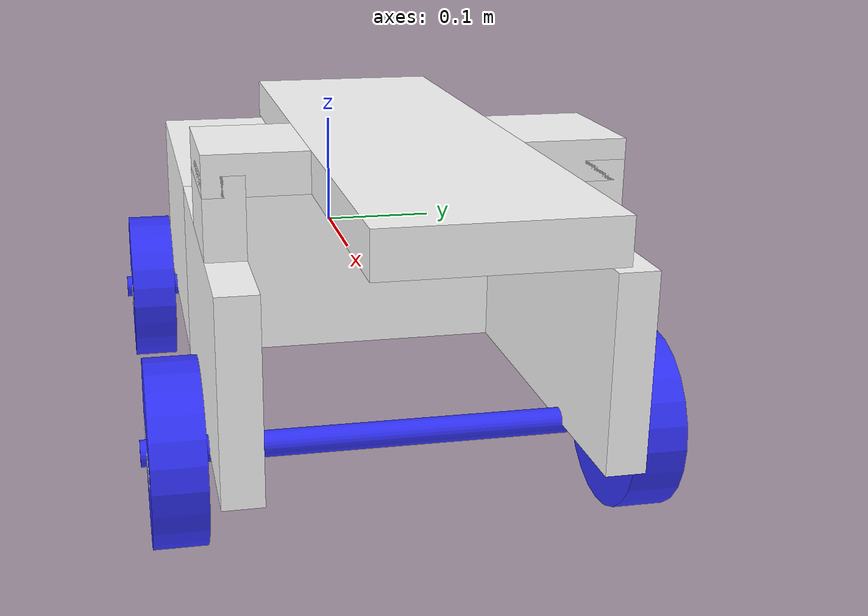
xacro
<?xml version="1.0"?>
<robot xmlns:xacro="http://www.ros.org/wiki/xacro">

    <xacro:include filename="$(find navigation_bot)/description/inertial_macros.xacro"/>
<!--================================================================ COLOURS ==================================================================================================== -->

    <material name="white">
        <color rgba="1 1 1 1"/>
    </material>

    <material name="orange">
        <color rgba="1 0.3 0.1 1"/>
    </material>

    <material name="blue">
        <color rgba="0.2 0.2 1 1"/>
    </material>

    <material name="red">
        <color rgba="1 0 0 1"/>
    </material>

    <material name="black">
        <color rgba="0 0 0 1"/>
    </material>

<!--================================================================ LINKS ====================================================================================================== -->

    <link name="origin"> <!-- base_link LINK -->
        <visual>
            <geometry>
                <box size="0.3 0.3 0.15"/>
            </geometry>
            <material name="white"/>
        </visual>
        <collision>
            <geometry>
                <box size="0.3 0.3 0.15"/>
            </geometry>
        </collision>
        <xacro:inertial_box mass="0.5" x="0.3" y="0.3" z="0.15">
            <origin xyz="0 0 0" rpy="0 0 0"/>
        </xacro:inertial_box>
    </link>

    <link name="base_link"> <!-- base_link LINK -->
    </link>

    <link name="Back_base_link">
        <visual>
            <origin xyz="0 0 0" rpy="${pi/2} 0 0"/>
            <axis xyz ="0 0 1"/>
            <geometry>
                <cylinder radius= "0.01" length="0.4"/>
            </geometry>
            <material name="blue"/>
        </visual>
    </link>

    <link name="Front_base_link">
        <visual>
            <origin xyz="0 0 0" rpy="${pi/2} 0 0"/>
            <axis xyz ="0 0 1"/>
            <geometry>
                <cylinder radius= "0.01" length="0.4"/>
            </geometry>
            <material name="blue"/>
        </visual>
    </link>

    <link name="LeftFront_wheel_support">
        <visual>
            <geometry>
                <box size="0.3 0.15 0.03"/>
            </geometry>
            <material name="white"/>
        </visual>
        <collision>
            <geometry>
                <box size="0.3 0.15 0.03"/>
            </geometry>
        </collision>
        <xacro:inertial_box mass="0.32" x="0.3" y="0.3" z="0.15">
            <origin xyz="0 0 0" rpy="0 0 0"/>
        </xacro:inertial_box>
    </link>

    <link name="RightFront_wheel_support">
        <visual>
            <geometry>
                <box size="0.3 0.15 0.03"/>
            </geometry>
            <material name="white"/>
        </visual>
        <collision>
            <geometry>
                <box size="0.3 0.15 0.03"/>
            </geometry>
        </collision>
        <xacro:inertial_box mass="0.32" x="0.3" y="0.3" z="0.15">
            <origin xyz="0 0 0" rpy="0 0 0"/>
        </xacro:inertial_box>
    </link>

    <link name="back_left_wheel">
        <visual>
            <geometry>
                <cylinder radius= "0.07" length="0.04"/>
            </geometry>
            <material name="blue"/>
        </visual>
        <collision>
            <geometry>
                <cylinder radius= "0.07" length="0.04"/>
            </geometry>
        </collision>
        <xacro:inertial_cylinder mass="0.1" length="0.04" radius="0.07">
            <origin xyz="0 0 0" rpy="0 0 0"/>
        </xacro:inertial_cylinder>
    </link>

    <link name="indicator_back_left_link">
        <visual>
            <geometry>
                <box size="0.1 0.01 0.001"/>
            </geometry>
            <material name="white"/>
        </visual>
    </link>

    <link name="back_right_wheel">
        <visual>
            <geometry>
                <cylinder radius= "0.07" length="0.04"/>
            </geometry>
            <material name="blue"/>
        </visual>
        <collision>
            <geometry>
                <cylinder radius= "0.07" length="0.04"/>
            </geometry>
        </collision>
        <xacro:inertial_cylinder mass="0.1" length="0.04" radius="0.07">
            <origin xyz="0 0 0" rpy="0 0 0"/>
        </xacro:inertial_cylinder>
    </link>

    <link name="indicator_back_right_link">
        <visual>
            <geometry>
                <box size="0.1 0.01 0.001"/>
            </geometry>
            <material name="white"/>
        </visual>
    </link>

    <link name="Front_left_wheel">
        <visual>
            <geometry>
                <cylinder radius= "0.07" length="0.04"/>
            </geometry>
            <material name="blue"/>
        </visual>
        <collision>
            <geometry>
                <cylinder radius= "0.07" length="0.04"/>
            </geometry>
        </collision>
        <xacro:inertial_cylinder mass="0.1" length="0.04" radius="0.07">
            <origin xyz="0 0 0" rpy="0 0 0"/>
        </xacro:inertial_cylinder>
    </link>

    <link name="Front_right_wheel">
        <visual>
            <geometry>
                <cylinder radius= "0.07" length="0.04"/>
            </geometry>
            <material name="blue"/>
        </visual>
        <collision>
            <geometry>
                <cylinder radius= "0.07" length="0.04"/>
            </geometry>
        </collision>
        <xacro:inertial_cylinder mass="0.1" length="0.04" radius="0.07">
            <origin xyz="0 0 0" rpy="0 0 0"/>
        </xacro:inertial_cylinder>
    </link>

     <link name="indicator_Front_left_link">
        <visual>
            <geometry>
                <box size="0.1 0.01 0.001"/>
            </geometry>
            <material name="white"/>
        </visual>
    </link>

    <link name="indicator_Front_right_link">
        <visual>
            <geometry>
                <box size="0.1 0.01 0.001"/>
            </geometry>
            <material name="white"/>
        </visual>
    </link>

    <link name="camera_platform_link">
        <visual>
            <geometry>
                <box size="0.5 0.15 0.03"/>
            </geometry>
            <material name="white"/>
        </visual>
        <collision>
            <geometry>
                <box size="0.5 0.15 0.03"/>
            </geometry>
        </collision>
        <xacro:inertial_box mass="0.01" x="0.3" y="0.3" z="0.15">
            <origin xyz="0 0 0" rpy="0 0 0"/>
        </xacro:inertial_box>
    </link>

    <link name="support_right">
        <visual>
            <geometry>
                <box size="0.1 0.03 0.06"/>
            </geometry>
            <material name="white"/>
        </visual>
        <collision>
            <geometry>
                <box size="0.1 0.03 0.06"/>
            </geometry>
        </collision>
        <xacro:inertial_box mass="0.5" x="0.3" y="0.3" z="0.15">
            <origin xyz="0 0 0" rpy="0 0 0"/>
        </xacro:inertial_box>
    </link>

    <link name="support_left">
        <visual>
            <geometry>
                <box size="0.1 0.03 0.06"/>
            </geometry>
            <material name="white"/>
        </visual>
        <collision>
            <geometry>
                <box size="0.1 0.03 0.06"/>
            </geometry>
        </collision>
        <xacro:inertial_box mass="0.5" x="0.3" y="0.3" z="0.15">
            <origin xyz="0 0 0" rpy="0 0 0"/>
        </xacro:inertial_box>
    </link>

    <link name="support">
        <visual>
            <geometry>
                <box size="0.1 0.3 0.03"/>
            </geometry>
            <material name="white"/>
        </visual>
    </link>

<!--================================================================ REFERENCES ================================================================================================= -->
    <gazebo reference="base_link">
        <material>Gazebo/White</material>
    </gazebo>

    <gazebo reference="Back_base_link">
        <material>Gazebo/Blue</material>
    </gazebo>

    <gazebo reference="Front_base_link">
        <material>Gazebo/Blue</material>
    </gazebo>

    <gazebo reference="LeftFront_wheel_support">
        <material>Gazebo/White</material>
    </gazebo>

    <gazebo reference="RightFront_wheel_support">
        <material>Gazebo/White</material>
    </gazebo>

    <gazebo reference="back_left_wheel">
        <mu1>1.7</mu1>
        <mu2>1.7</mu2>
        <material>Gazebo/Blue</material>
    </gazebo>

    <gazebo reference="indicator_back_left_link">
        <material>Gazebo/White</material>
    </gazebo>

    <gazebo reference="back_right_wheel">
        <mu1>1.7</mu1>
        <mu2>1.7</mu2>
        <material>Gazebo/Blue</material>
    </gazebo>

    <gazebo reference="indicator_back_right_link">
        <material>Gazebo/White</material>
    </gazebo>

    <gazebo reference="Front_left_wheel">
        <mu1>0.1</mu1>
        <mu2>0.1</mu2>
        <material>Gazebo/Blue</material>
    </gazebo>

    <gazebo reference="indicator_Front_left_link">
        <material>Gazebo/White</material>
    </gazebo>

    <gazebo reference="Front_right_wheel">
        <mu1>0.1</mu1>
        <mu2>0.1</mu2>
        <material>Gazebo/Blue</material>
    </gazebo>

    <gazebo reference="indicator_Front_right_link">
        <material>Gazebo/White</material>
    </gazebo>

    <gazebo reference="support_right">
        <material>Gazebo/White</material>
    </gazebo>

    <gazebo reference="support_left">
        <material>Gazebo/White</material>
    </gazebo>

<!--================================================================ JOINTS ===================================================================================================== -->

    <joint name="reference" type="fixed">
        <parent link="base_link"/>
        <child link="origin"/>
        <origin xyz="0.0 0 0.0"/>
    </joint>

    <joint name="Back_base_link_joint" type="fixed">
        <parent link="base_link"/>
        <child link="Back_base_link"/>
        <origin xyz="-0.05 0 -0.075"/>
    </joint>

    <joint name="Front_base_link_joint" type="fixed">
        <parent link="base_link"/>
        <child link="Front_base_link"/>
        <origin xyz="0.35 0 -0.075"/>
    </joint>

    <joint name="LeftFront_wheel_joint" type="fixed">
        <parent link="base_link"/>
        <child link="LeftFront_wheel_support"/>
        <origin xyz="0.3 -0.135 0" rpy="-${pi/2} 0 0"/>
    </joint>

    <joint name="RightFront_wheel_joint" type="fixed">
        <parent link="base_link"/>
        <child link="RightFront_wheel_support"/>
        <origin xyz="0.3 0.135 0" rpy="${pi/2} 0 0"/>
    </joint>

    <joint name="back_left_wheel_joint" type="continuous">
        <parent link="base_link"/>
        <child link="back_left_wheel"/>
        <origin xyz="-0.05 -0.175 -0.075" rpy="${pi/2} 0 0"/>
        <axis xyz ="0 0 -1"/>
    </joint>

    <joint name="indicator_back_left_joint" type="fixed">
        <parent link ="back_left_wheel"/>
        <child link ="indicator_back_left_link"/>
        <origin xyz="0 0 0.02"/>
    </joint>

    <joint name="back_right_wheel_joint" type="continuous">
        <parent link="base_link"/>
        <child link="back_right_wheel"/>
        <origin xyz="-0.05 0.175 -0.075" rpy="${pi/2} 0 0"/>
        <axis xyz ="0 0 -1"/>
    </joint>

    <joint name="indicator_back_right_joint" type="fixed">
        <parent link ="back_right_wheel"/>
        <child link ="indicator_back_right_link"/>
        <origin xyz="0 0 -0.02"/>
    </joint>

    <joint name="Front_left_wheel_joint" type="fixed">
        <parent link="base_link"/>
        <child link="Front_left_wheel"/>
        <origin xyz="0.35 -0.175 -0.075" rpy="${pi/2} 0 0"/>
        <axis xyz ="0 0 -1"/>
    </joint>

    <joint name="indicator_Front_left_joint" type="fixed">
        <parent link ="Front_left_wheel"/>
        <child link ="indicator_Front_left_link"/>
        <origin xyz="0 0 0.02"/>
    </joint>

    <joint name="Front_right_wheel_joint" type="fixed">
        <parent link="base_link"/>
        <child link="Front_right_wheel"/>
        <origin xyz="0.35 0.175 -0.075" rpy="${pi/2} 0 0"/>
        <axis xyz ="0 0 -1"/>
    </joint>

    <joint name="indicator_Front_right_joint" type="fixed">
        <parent link ="Front_right_wheel"/>
        <child link ="indicator_Front_right_link"/>
        <origin xyz="0 0 -0.02" />
    </joint>

    <joint name="camera_platform_joint" type="fixed">
        <parent link="base_link"/>
        <child link="camera_platform_link"/>
        <origin xyz="0.325 0 0.135" rpy="0 0 0"/>
    </joint>

    <joint name="support_right_joint" type="fixed">
        <parent link="support"/>
        <child link="support_right"/>
        <origin xyz="0 0.135 -0.03"/>
    </joint>

    <joint name="support_left_joint" type="fixed">
        <parent link="support"/>
        <child link="support_left"/>
        <origin xyz="0 -0.135 -0.03"/>
    </joint>

    <joint name="support_joint" type="fixed">
        <parent link="camera_platform_link"/>
        <child link="support"/>
        <origin xyz="0 0 0"/>
    </joint>

</robot>

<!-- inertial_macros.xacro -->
<robot xmlns:xacro="http://www.ros.org/wiki/xacro">

    <!-- Specify some standard inertial calculations https://en.wikipedia.org/wiki/List_of_moments_of_inertia -->
    <!-- These make use of xacro's mathematical functionality -->

    <xacro:macro name="inertial_sphere" params="mass radius *origin">
        <inertial>
            <xacro:insert_block name="origin"/>
            <mass value="${mass}" />
            <inertia ixx="${(2/5) * mass * (radius*radius)}" ixy="0.0" ixz="0.0"
                    iyy="${(2/5) * mass * (radius*radius)}" iyz="0.0"
                    izz="${(2/5) * mass * (radius*radius)}" />
        </inertial>
    </xacro:macro>

    <xacro:macro name="inertial_box" params="mass x y z *origin">
        <inertial>
            <xacro:insert_block name="origin"/>
            <mass value="${mass}" />
            <inertia ixx="${(1/12) * mass * (y*y+z*z)}" ixy="0.0" ixz="0.0"
                    iyy="${(1/12) * mass * (x*x+z*z)}" iyz="0.0"
                    izz="${(1/12) * mass * (x*x+y*y)}" />
        </inertial>
    </xacro:macro>

    <xacro:macro name="inertial_cylinder" params="mass length radius *origin">
        <inertial>
            <xacro:insert_block name="origin"/>
            <mass value="${mass}" />
            <inertia ixx="${(1/12) * mass * (3*radius*radius + length*length)}" ixy="0.0" ixz="0.0"
                    iyy="${(1/12) * mass * (3*radius*radius + length*length)}" iyz="0.0"
                    izz="${(1/2) * mass * (radius*radius)}" />
        </inertial>
    </xacro:macro>

</robot>
